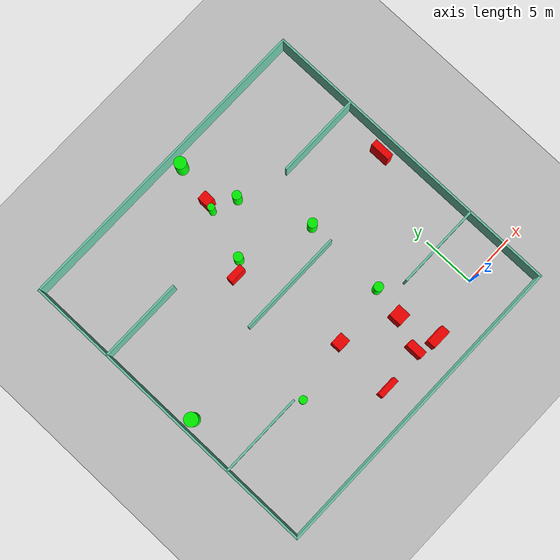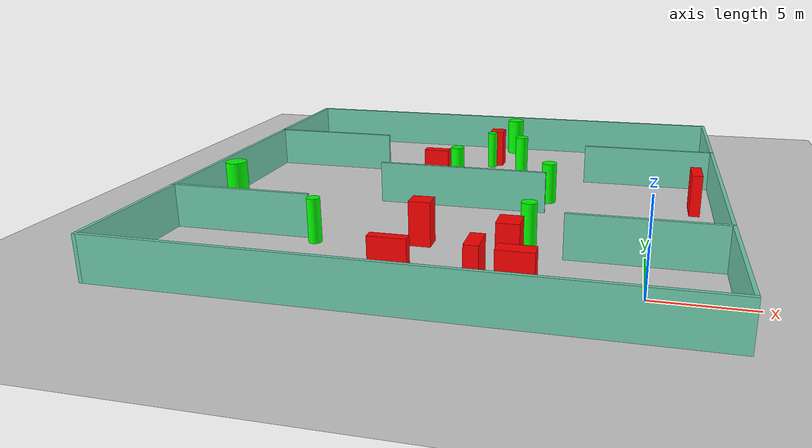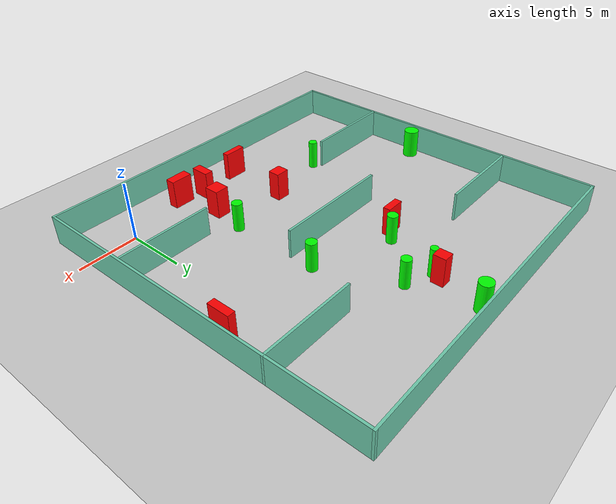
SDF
<sdf version="1.7">
 <world name="default">
  <light name="sun" type="directional">
   <pose>0 0 10 0 -0 0</pose>
   <diffuse>0.8 0.8 0.8 1</diffuse>
   <specular>0.2 0.2 0.2 1</specular>
   <attenuation>
    <range>1000</range>
    <constant>0.9</constant>
    <linear>0.01</linear>
    <quadratic>0.001</quadratic>
   </attenuation>
   <direction>-0.5 0.1 -0.9</direction>
   <spot><inner_angle>0</inner_angle><outer_angle>0</outer_angle><falloff>0</falloff></spot>
  </light>
  <model name="ground_plane">
   <static>1</static>
   <link name="link">
    <collision name="collision">
     <geometry><plane><normal>0 0 1</normal><size>100 100</size></plane></geometry>
     <surface>
      <contact><collide_bitmask>65535</collide_bitmask></contact>
      <friction><ode><mu>100</mu><mu2>50</mu2></ode></friction>
     </surface>
    </collision>
    <visual name="visual">
     <cast_shadows>0</cast_shadows>
     <geometry><plane><normal>0 0 1</normal><size>100 100</size></plane></geometry>
     <material>
      <script><uri>file://media/materials/scripts/gazebo.material</uri><name>Gazebo/Grey</name></script>
     </material>
    </visual>
   </link>
  </model>
  <gravity>0 0 -9.8</gravity>
  <magnetic_field>6e-06 2.3e-05 -4.2e-05</magnetic_field>
  <atmosphere type="adiabatic"/>
  <physics type="ode">
   <max_step_size>0.001</max_step_size>
   <real_time_factor>1</real_time_factor>
   <real_time_update_rate>1000</real_time_update_rate>
  </physics>
  <scene><ambient>0.4 0.4 0.4 1</ambient><background>0.7 0.7 0.7 1</background><shadows>1</shadows></scene>
  <spherical_coordinates>
   <surface_model>EARTH_WGS84</surface_model>
   <latitude_deg>0</latitude_deg>
   <longitude_deg>0</longitude_deg>
   <elevation>0</elevation>
   <heading_deg>0</heading_deg>
  </spherical_coordinates>
  <model name="my_base_walls">
   <link name="Wall_10">
    <collision name="Wall_10_Collision">
     <geometry><box><size>8.2 0.2 2.5</size></box></geometry>
     <pose>0 0 1.25 0 -0 0</pose>
    </collision>
    <visual name="Wall_10_Visual">
     <pose>0 0 1.25 0 -0 0</pose>
     <geometry><box><size>8.2 0.2 2.5</size></box></geometry>
     <material>
      <script><uri>file://media/materials/scripts/gazebo.material</uri><name>Gazebo/Grey</name></script>
      <ambient>0.435294 0.796078 0.67451 1</ambient>
     </material>
     <meta><layer>0</layer></meta>
    </visual>
    <pose>-11 -7 0 0 -0 0</pose>
   </link>
   <link name="Wall_12">
    <collision name="Wall_12_Collision">
     <geometry><box><size>8.2 0.2 2.5</size></box></geometry>
     <pose>0 0 1.25 0 -0 0</pose>
    </collision>
    <visual name="Wall_12_Visual">
     <pose>0 0 1.25 0 -0 0</pose>
     <geometry><box><size>8.2 0.2 2.5</size></box></geometry>
     <material>
      <script><uri>file://media/materials/scripts/gazebo.material</uri><name>Gazebo/Grey</name></script>
      <ambient>0.435294 0.796078 0.67451 1</ambient>
     </material>
     <meta><layer>0</layer></meta>
    </visual>
    <pose>-11 7 0 0 -0 0</pose>
   </link>
   <link name="Wall_14">
    <collision name="Wall_14_Collision">
     <geometry><box><size>8.2 0.2 2.5</size></box></geometry>
     <pose>0 0 1.25 0 -0 0</pose>
    </collision>
    <visual name="Wall_14_Visual">
     <pose>0 0 1.25 0 -0 0</pose>
     <geometry><box><size>8.2 0.2 2.5</size></box></geometry>
     <material>
      <script><uri>file://media/materials/scripts/gazebo.material</uri><name>Gazebo/Grey</name></script>
      <ambient>0.435294 0.796078 0.67451 1</ambient>
     </material>
     <meta><layer>0</layer></meta>
    </visual>
    <pose>11 7 0 0 -0 3.14159</pose>
   </link>
   <link name="Wall_16">
    <collision name="Wall_16_Collision">
     <geometry><box><size>10.2 0.2 2.5</size></box></geometry>
     <pose>0 0 1.25 0 -0 0</pose>
    </collision>
    <visual name="Wall_16_Visual">
     <pose>0 0 1.25 0 -0 0</pose>
     <geometry><box><size>10.2 0.2 2.5</size></box></geometry>
     <material>
      <script><uri>file://media/materials/scripts/gazebo.material</uri><name>Gazebo/Grey</name></script>
      <ambient>0.435294 0.796078 0.67451 1</ambient>
     </material>
     <meta><layer>0</layer></meta>
    </visual>
    <pose>0 0 0 0 -0 3.14159</pose>
   </link>
   <link name="Wall_2">
    <collision name="Wall_2_Collision">
     <geometry><box><size>30.2 0.2 2.5</size></box></geometry>
     <pose>0 0 1.25 0 -0 0</pose>
    </collision>
    <visual name="Wall_2_Visual">
     <pose>0 0 1.25 0 -0 0</pose>
     <geometry><box><size>30.2 0.2 2.5</size></box></geometry>
     <material>
      <script><uri>file://media/materials/scripts/gazebo.material</uri><name>Gazebo/Grey</name></script>
      <ambient>0.435294 0.796078 0.67451 1</ambient>
     </material>
     <meta><layer>0</layer></meta>
    </visual>
    <pose>0 -15 0 0 -0 3.14159</pose>
   </link>
   <link name="Wall_3">
    <collision name="Wall_3_Collision">
     <geometry><box><size>30.2 0.2 2.5</size></box></geometry>
     <pose>0 0 1.25 0 -0 0</pose>
    </collision>
    <visual name="Wall_3_Visual">
     <pose>0 0 1.25 0 -0 0</pose>
     <geometry><box><size>30.2 0.2 2.5</size></box></geometry>
     <material>
      <script><uri>file://media/materials/scripts/gazebo.material</uri><name>Gazebo/Grey</name></script>
      <ambient>0.435294 0.796078 0.67451 1</ambient>
     </material>
     <meta><layer>0</layer></meta>
    </visual>
    <pose>-15 0 0 0 -0 1.5708</pose>
   </link>
   <link name="Wall_4">
    <collision name="Wall_4_Collision">
     <geometry><box><size>30.2 0.2 2.5</size></box></geometry>
     <pose>0 0 1.25 0 -0 0</pose>
    </collision>
    <visual name="Wall_4_Visual">
     <pose>0 0 1.25 0 -0 0</pose>
     <geometry><box><size>30.2 0.2 2.5</size></box></geometry>
     <material>
      <script><uri>file://media/materials/scripts/gazebo.material</uri><name>Gazebo/Grey</name></script>
      <ambient>0.435294 0.796078 0.67451 1</ambient>
     </material>
     <meta><layer>0</layer></meta>
    </visual>
    <pose>0 15 0 0 -0 0</pose>
   </link>
   <link name="Wall_6">
    <collision name="Wall_6_Collision">
     <geometry><box><size>30.2 0.2 2.5</size></box></geometry>
     <pose>0 0 1.25 0 -0 0</pose>
    </collision>
    <visual name="Wall_6_Visual">
     <pose>0 0 1.25 0 -0 0</pose>
     <geometry><box><size>30.2 0.2 2.5</size></box></geometry>
     <material>
      <script><uri>file://media/materials/scripts/gazebo.material</uri><name>Gazebo/Grey</name></script>
      <ambient>0.435294 0.796078 0.67451 1</ambient>
     </material>
     <meta><layer>0</layer></meta>
    </visual>
    <pose>15 0 0 0 -0 1.5708</pose>
   </link>
   <link name="Wall_8">
    <collision name="Wall_8_Collision">
     <geometry><box><size>8.2 0.2 2.5</size></box></geometry>
     <pose>0 0 1.25 0 -0 0</pose>
    </collision>
    <visual name="Wall_8_Visual">
     <pose>0 0 1.25 0 -0 0</pose>
     <geometry><box><size>8.2 0.2 2.5</size></box></geometry>
     <material>
      <script><uri>file://media/materials/scripts/gazebo.material</uri><name>Gazebo/Grey</name></script>
      <ambient>0.435294 0.796078 0.67451 1</ambient>
     </material>
     <meta><layer>0</layer></meta>
    </visual>
    <pose>11 -7 0 0 -0 3.14159</pose>
   </link>
   <static>1</static>
   <pose>-11 11 0 0 -0 0</pose>
  </model>
  <model name="cylinder1">
   <static>1</static>
   <link name="link">
    <inertial>
     <mass>1</mass>
     <inertia><ixx>0.5</ixx><ixy>0</ixy><ixz>0</ixz><iyy>0.5</iyy><iyz>0</iyz><izz>1</izz></inertia>
    </inertial>
    <collision name="collision">
     <geometry><cylinder><radius>0.4516340526588119</radius><length>2.5</length></cylinder></geometry>
    </collision>
    <visual name="visual">
     <geometry><cylinder><radius>0.4516340526588119</radius><length>2.5</length></cylinder></geometry>
     <material>
      <ambient>0 1 0 1</ambient>
      <diffuse>0 1 0 1</diffuse>
      <specular>0.1 0.1 0.1 1</specular>
      <emissive>0 0 0 0</emissive>
     </material>
    </visual>
   </link>
   <pose>-5.931781975739515 13.141711947199145 1.25 0 0 0</pose>
  </model>
  <model name="cylinder2">
   <static>1</static>
   <link name="link">
    <inertial>
     <mass>1</mass>
     <inertia><ixx>0.5</ixx><ixy>0</ixy><ixz>0</ixz><iyy>0.5</iyy><iyz>0</iyz><izz>1</izz></inertia>
    </inertial>
    <collision name="collision">
     <geometry><cylinder><radius>0.4361749116169782</radius><length>2.5</length></cylinder></geometry>
    </collision>
    <visual name="visual">
     <geometry><cylinder><radius>0.4361749116169782</radius><length>2.5</length></cylinder></geometry>
     <material>
      <ambient>0 1 0 1</ambient>
      <diffuse>0 1 0 1</diffuse>
      <specular>0.1 0.1 0.1 1</specular>
      <emissive>0 0 0 0</emissive>
     </material>
    </visual>
   </link>
   <pose>-6.063726619577029 5.340685547494806 1.25 0 0 0</pose>
  </model>
  <model name="cylinder3">
   <static>1</static>
   <link name="link">
    <inertial>
     <mass>1</mass>
     <inertia><ixx>0.5</ixx><ixy>0</ixy><ixz>0</ixz><iyy>0.5</iyy><iyz>0</iyz><izz>1</izz></inertia>
    </inertial>
    <collision name="collision">
     <geometry><cylinder><radius>0.36965027556311325</radius><length>2.5</length></cylinder></geometry>
    </collision>
    <visual name="visual">
     <geometry><cylinder><radius>0.36965027556311325</radius><length>2.5</length></cylinder></geometry>
     <material>
      <ambient>0 1 0 1</ambient>
      <diffuse>0 1 0 1</diffuse>
      <specular>0.1 0.1 0.1 1</specular>
      <emissive>0 0 0 0</emissive>
     </material>
    </visual>
   </link>
   <pose>-17.371761050662574 3.452992011724062 1.25 0 0 0</pose>
  </model>
  <model name="cylinder4">
   <static>1</static>
   <link name="link">
    <inertial>
     <mass>1</mass>
     <inertia><ixx>0.5</ixx><ixy>0</ixy><ixz>0</ixz><iyy>0.5</iyy><iyz>0</iyz><izz>1</izz></inertia>
    </inertial>
    <collision name="collision">
     <geometry><cylinder><radius>0.3219597144391325</radius><length>2.5</length></cylinder></geometry>
    </collision>
    <visual name="visual">
     <geometry><cylinder><radius>0.3219597144391325</radius><length>2.5</length></cylinder></geometry>
     <material>
      <ambient>0 1 0 1</ambient>
      <diffuse>0 1 0 1</diffuse>
      <specular>0.1 0.1 0.1 1</specular>
      <emissive>0 0 0 0</emissive>
     </material>
    </visual>
   </link>
   <pose>-10.87417244485853 20.366401608496176 1.25 0 0 0</pose>
  </model>
  <model name="cylinder5">
   <static>1</static>
   <link name="link">
    <inertial>
     <mass>1</mass>
     <inertia><ixx>0.5</ixx><ixy>0</ixy><ixz>0</ixz><iyy>0.5</iyy><iyz>0</iyz><izz>1</izz></inertia>
    </inertial>
    <collision name="collision">
     <geometry><cylinder><radius>0.4211371303279362</radius><length>2.5</length></cylinder></geometry>
    </collision>
    <visual name="visual">
     <geometry><cylinder><radius>0.4211371303279362</radius><length>2.5</length></cylinder></geometry>
     <material>
      <ambient>0 1 0 1</ambient>
      <diffuse>0 1 0 1</diffuse>
      <specular>0.1 0.1 0.1 1</specular>
      <emissive>0 0 0 0</emissive>
     </material>
    </visual>
   </link>
   <pose>-8.627539062905903 19.492855753482793 1.25 0 0 0</pose>
  </model>
  <model name="cylinder6">
   <static>1</static>
   <link name="link">
    <inertial>
     <mass>1</mass>
     <inertia><ixx>0.5</ixx><ixy>0</ixy><ixz>0</ixz><iyy>0.5</iyy><iyz>0</iyz><izz>1</izz></inertia>
    </inertial>
    <collision name="collision">
     <geometry><cylinder><radius>0.5756604856747826</radius><length>2.5</length></cylinder></geometry>
    </collision>
    <visual name="visual">
     <geometry><cylinder><radius>0.5756604856747826</radius><length>2.5</length></cylinder></geometry>
     <material>
      <ambient>0 1 0 1</ambient>
      <diffuse>0 1 0 1</diffuse>
      <specular>0.1 0.1 0.1 1</specular>
      <emissive>0 0 0 0</emissive>
     </material>
    </visual>
   </link>
   <pose>-9.921175781876036 24.94739640327001 1.25 0 0 0</pose>
  </model>
  <model name="cylinder7">
   <static>1</static>
   <link name="link">
    <inertial>
     <mass>1</mass>
     <inertia><ixx>0.5</ixx><ixy>0</ixy><ixz>0</ixz><iyy>0.5</iyy><iyz>0</iyz><izz>1</izz></inertia>
    </inertial>
    <collision name="collision">
     <geometry><cylinder><radius>0.6427124925642655</radius><length>2.5</length></cylinder></geometry>
    </collision>
    <visual name="visual">
     <geometry><cylinder><radius>0.6427124925642655</radius><length>2.5</length></cylinder></geometry>
     <material>
      <ambient>0 1 0 1</ambient>
      <diffuse>0 1 0 1</diffuse>
      <specular>0.1 0.1 0.1 1</specular>
      <emissive>0 0 0 0</emissive>
     </material>
    </visual>
   </link>
   <pose>-24.9950967182311 9.139595807198514 1.25 0 0 0</pose>
  </model>
  <model name="cylinder8">
   <static>1</static>
   <link name="link">
    <inertial>
     <mass>1</mass>
     <inertia><ixx>0.5</ixx><ixy>0</ixy><ixz>0</ixz><iyy>0.5</iyy><iyz>0</iyz><izz>1</izz></inertia>
    </inertial>
    <collision name="collision">
     <geometry><cylinder><radius>0.43479371153921764</radius><length>2.5</length></cylinder></geometry>
    </collision>
    <visual name="visual">
     <geometry><cylinder><radius>0.43479371153921764</radius><length>2.5</length></cylinder></geometry>
     <material>
      <ambient>0 1 0 1</ambient>
      <diffuse>0 1 0 1</diffuse>
      <specular>0.1 0.1 0.1 1</specular>
      <emissive>0 0 0 0</emissive>
     </material>
    </visual>
   </link>
   <pose>-12.382123104196785 15.739920297137214 1.25 0 0 0</pose>
  </model>
  <model name="box1">
   <static>1</static>
   <link name="link">
    <inertial>
     <mass>1</mass>
     <inertia><ixx>0.083</ixx><ixy>0</ixy><ixz>0</ixz><iyy>0.083</iyy><iyz>0</iyz><izz>0.083</izz></inertia>
    </inertial>
    <collision name="collision">
     <geometry><box><size>0.7328750862074906 1.604610973678112 2.5</size></box></geometry>
    </collision>
    <visual name="visual">
     <geometry><box><size>0.7328750862074906 1.604610973678112 2.5</size></box></geometry>
     <material>
      <ambient>1 0 0 1</ambient>
      <diffuse>1 0 0 1</diffuse>
      <specular>0.1 0.1 0.1 1</specular>
      <emissive>0 0 0 0</emissive>
     </material>
    </visual>
    <sensor name="my_contact" type="contact">
     <contact><collision>box_collision</collision><topic>__default_topic__</topic></contact>
    </sensor>
   </link>
   <pose>-7.734599274487156 -0.5621964813195914 1.25 0 0 0</pose>
  </model>
  <model name="box2">
   <static>1</static>
   <link name="link">
    <inertial>
     <mass>1</mass>
     <inertia><ixx>0.083</ixx><ixy>0</ixy><ixz>0</ixz><iyy>0.083</iyy><iyz>0</iyz><izz>0.083</izz></inertia>
    </inertial>
    <collision name="collision">
     <geometry><box><size>1.2044740961044824 1.2905415344792082 2.5</size></box></geometry>
    </collision>
    <visual name="visual">
     <geometry><box><size>1.2044740961044824 1.2905415344792082 2.5</size></box></geometry>
     <material>
      <ambient>1 0 0 1</ambient>
      <diffuse>1 0 0 1</diffuse>
      <specular>0.1 0.1 0.1 1</specular>
      <emissive>0 0 0 0</emissive>
     </material>
    </visual>
    <sensor name="my_contact" type="contact">
     <contact><collision>box_collision</collision><topic>__default_topic__</topic></contact>
    </sensor>
   </link>
   <pose>-6.601310674012538 2.4185604184442466 1.25 0 0 0</pose>
  </model>
  <model name="box3">
   <static>1</static>
   <link name="link">
    <inertial>
     <mass>1</mass>
     <inertia><ixx>0.083</ixx><ixy>0</ixy><ixz>0</ixz><iyy>0.083</iyy><iyz>0</iyz><izz>0.083</izz></inertia>
    </inertial>
    <collision name="collision">
     <geometry><box><size>1.5863260248185005 0.609013095417118 2.5</size></box></geometry>
    </collision>
    <visual name="visual">
     <geometry><box><size>1.5863260248185005 0.609013095417118 2.5</size></box></geometry>
     <material>
      <ambient>1 0 0 1</ambient>
      <diffuse>1 0 0 1</diffuse>
      <specular>0.1 0.1 0.1 1</specular>
      <emissive>0 0 0 0</emissive>
     </material>
    </visual>
    <sensor name="my_contact" type="contact">
     <contact><collision>box_collision</collision><topic>__default_topic__</topic></contact>
    </sensor>
   </link>
   <pose>-13.540738657991813 14.903367394419202 1.25 0 0 0</pose>
  </model>
  <model name="box4">
   <static>1</static>
   <link name="link">
    <inertial>
     <mass>1</mass>
     <inertia><ixx>0.083</ixx><ixy>0</ixy><ixz>0</ixz><iyy>0.083</iyy><iyz>0</iyz><izz>0.083</izz></inertia>
    </inertial>
    <collision name="collision">
     <geometry><box><size>1.8338006479534763 0.8424249953609508 2.5</size></box></geometry>
    </collision>
    <visual name="visual">
     <geometry><box><size>1.8338006479534763 0.8424249953609508 2.5</size></box></geometry>
     <material>
      <ambient>1 0 0 1</ambient>
      <diffuse>1 0 0 1</diffuse>
      <specular>0.1 0.1 0.1 1</specular>
      <emissive>0 0 0 0</emissive>
     </material>
    </visual>
    <sensor name="my_contact" type="contact">
     <contact><collision>box_collision</collision><topic>__default_topic__</topic></contact>
    </sensor>
   </link>
   <pose>-5.69898404630497 -1.2123582773239936 1.25 0 0 0</pose>
  </model>
  <model name="box5">
   <static>1</static>
   <link name="link">
    <inertial>
     <mass>1</mass>
     <inertia><ixx>0.083</ixx><ixy>0</ixy><ixz>0</ixz><iyy>0.083</iyy><iyz>0</iyz><izz>0.083</izz></inertia>
    </inertial>
    <collision name="collision">
     <geometry><box><size>0.624402603751523 1.9214936092047985 2.5</size></box></geometry>
    </collision>
    <visual name="visual">
     <geometry><box><size>0.624402603751523 1.9214936092047985 2.5</size></box></geometry>
     <material>
      <ambient>1 0 0 1</ambient>
      <diffuse>1 0 0 1</diffuse>
      <specular>0.1 0.1 0.1 1</specular>
      <emissive>0 0 0 0</emissive>
     </material>
    </visual>
    <sensor name="my_contact" type="contact">
     <contact><collision>box_collision</collision><topic>__default_topic__</topic></contact>
    </sensor>
   </link>
   <pose>2.806032463485824 13.174750633700988 1.25 0 0 0</pose>
  </model>
  <model name="box6">
   <static>1</static>
   <link name="link">
    <inertial>
     <mass>1</mass>
     <inertia><ixx>0.083</ixx><ixy>0</ixy><ixz>0</ixz><iyy>0.083</iyy><iyz>0</iyz><izz>0.083</izz></inertia>
    </inertial>
    <collision name="collision">
     <geometry><box><size>0.9289524531552114 1.063144974130652 2.5</size></box></geometry>
    </collision>
    <visual name="visual">
     <geometry><box><size>0.9289524531552114 1.063144974130652 2.5</size></box></geometry>
     <material>
      <ambient>1 0 0 1</ambient>
      <diffuse>1 0 0 1</diffuse>
      <specular>0.1 0.1 0.1 1</specular>
      <emissive>0 0 0 0</emissive>
     </material>
    </visual>
    <sensor name="my_contact" type="contact">
     <contact><collision>box_collision</collision><topic>__default_topic__</topic></contact>
    </sensor>
   </link>
   <pose>-10.63371331187524 21.189186839915564 1.25 0 0 0</pose>
  </model>
  <model name="box7">
   <static>1</static>
   <link name="link">
    <inertial>
     <mass>1</mass>
     <inertia><ixx>0.083</ixx><ixy>0</ixy><ixz>0</ixz><iyy>0.083</iyy><iyz>0</iyz><izz>0.083</izz></inertia>
    </inertial>
    <collision name="collision">
     <geometry><box><size>1.1910011521170372 1.022925004258097 2.5</size></box></geometry>
    </collision>
    <visual name="visual">
     <geometry><box><size>1.1910011521170372 1.022925004258097 2.5</size></box></geometry>
     <material>
      <ambient>1 0 0 1</ambient>
      <diffuse>1 0 0 1</diffuse>
      <specular>0.1 0.1 0.1 1</specular>
      <emissive>0 0 0 0</emissive>
     </material>
    </visual>
    <sensor name="my_contact" type="contact">
     <contact><collision>box_collision</collision><topic>__default_topic__</topic></contact>
    </sensor>
   </link>
   <pose>-11.677523687355443 4.496297139200715 1.25 0 0 0</pose>
  </model>
  <model name="box8">
   <static>1</static>
   <link name="link">
    <inertial>
     <mass>1</mass>
     <inertia><ixx>0.083</ixx><ixy>0</ixy><ixz>0</ixz><iyy>0.083</iyy><iyz>0</iyz><izz>0.083</izz></inertia>
    </inertial>
    <collision name="collision">
     <geometry><box><size>1.9262631238031087 0.5195488822746448 2.5</size></box></geometry>
    </collision>
    <visual name="visual">
     <geometry><box><size>1.9262631238031087 0.5195488822746448 2.5</size></box></geometry>
     <material>
      <ambient>1 0 0 1</ambient>
      <diffuse>1 0 0 1</diffuse>
      <specular>0.1 0.1 0.1 1</specular>
      <emissive>0 0 0 0</emissive>
     </material>
    </visual>
    <sensor name="my_contact" type="contact">
     <contact><collision>box_collision</collision><topic>__default_topic__</topic></contact>
    </sensor>
   </link>
   <pose>-11.723633072347692 -1.0328919444462943 1.25 0 0 0</pose>
  </model>
 </world>
</sdf>
